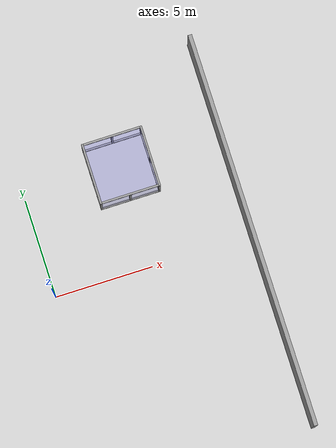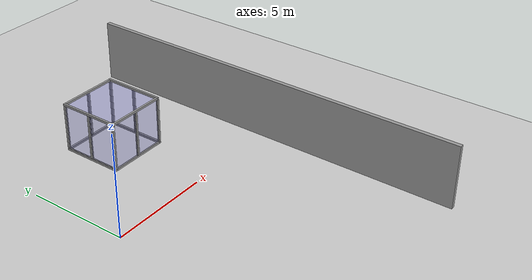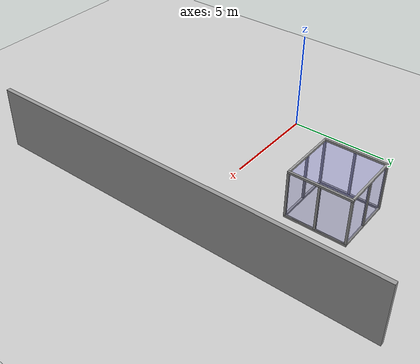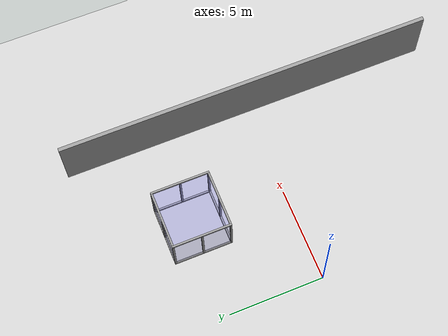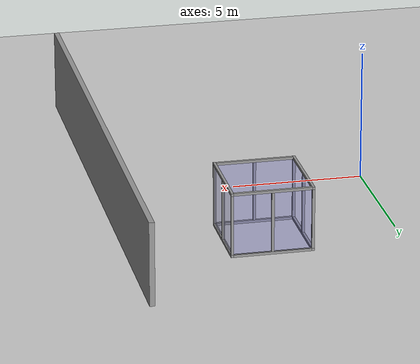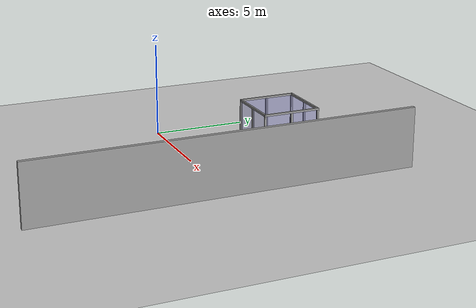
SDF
<sdf version="1.6">
 <world name="default">
  <model name="ground_plane">
   <static>1</static>
   <link name="link">
    <collision name="collision">
     <geometry><plane><normal>0 0 1</normal><size>100 100</size></plane></geometry>
     <surface><friction><ode><mu>100</mu><mu2>50</mu2></ode></friction></surface>
    </collision>
    <visual name="visual">
     <cast_shadows>0</cast_shadows>
     <geometry><plane><normal>0 0 1</normal><size>100 100</size></plane></geometry>
     <material>
      <script><uri>file://media/materials/scripts/gazebo.material</uri><name>Gazebo/Grey</name></script>
     </material>
    </visual>
   </link>
  </model>
  <model name="big_grey_wall_3">
   <static>1</static>
   <link name="link">
    <pose>0 0 1.4 0 -0 0</pose>
    <collision name="collision"><geometry><box><size>20 0.2 3.5</size></box></geometry></collision>
    <visual name="visual">
     <cast_shadows>0</cast_shadows>
     <geometry><box><size>20 0.2 3.5</size></box></geometry>
     <material>
      <script>
       <uri>model://grey_wall/materials/scripts</uri>
       <uri>model://grey_wall/materials/textures</uri>
       <name>vrc/grey_wall</name>
      </script>
     </material>
    </visual>
   </link>
   <pose>10.12 0 0 0 -0 1.5707</pose>
  </model>
  <model name="cage_1">
   <link name="link">
    <pose>0 -0 1.25 0 -0 0</pose>
    <inertial>
     <inertia><ixx>1</ixx><ixy>0</ixy><ixz>0</ixz><iyy>1</iyy><iyz>0</iyz><izz>1</izz></inertia>
     <mass>1</mass>
    </inertial>
    <visual name="visual">
     <geometry><box><size>3 3 2.3</size></box></geometry>
     <material>
      <script><name>Gazebo/Grey</name><uri>file://media/materials/scripts/gazebo.material</uri></script>
      <ambient>0.3 0.3 0.8 1</ambient>
      <diffuse>0.7 0.7 0.7 1</diffuse>
      <specular>0.01 0.01 0.01 1</specular>
      <emissive>0 0 0 1</emissive>
      <shader type="vertex"><normal_map>__default__</normal_map></shader>
     </material>
     <transparency>0.75</transparency>
    </visual>
   </link>
   <link name="base_back">
    <pose>-1.5 0 0.05 0 -0 1.5707</pose>
    <inertial>
     <mass>1</mass>
     <inertia>
      <ixx>0.166667</ixx>
      <ixy>0</ixy>
      <ixz>0</ixz>
      <iyy>0.166667</iyy>
      <iyz>0</iyz>
      <izz>0.166667</izz>
     </inertia>
    </inertial>
    <visual name="visual">
     <geometry><box><size>3.1 0.1 0.1</size></box></geometry>
     <material>
      <lighting>1</lighting>
      <script><uri>file://media/materials/scripts/gazebo.material</uri><name>Gazebo/Grey</name></script>
      <ambient>0.25 0.25 0.25 1</ambient>
      <diffuse>0.7 0.7 0.7 1</diffuse>
      <specular>0.01 0.01 0.01 1</specular>
      <emissive>0 0 0 1</emissive>
      <shader type="vertex"><normal_map>__default__</normal_map></shader>
     </material>
    </visual>
    <collision name="collision">
     <geometry><box><size>3.1 0.1 0.1</size></box></geometry>
     <surface>
      <friction>
       <ode><mu>100</mu><mu2>100</mu2><fdir1>0 0 0</fdir1><slip1>0</slip1><slip2>0</slip2></ode>
       <torsional>
        <coefficient>1</coefficient>
        <patch_radius>0</patch_radius>
        <surface_radius>0</surface_radius>
        <use_patch_radius>1</use_patch_radius>
        <ode><slip>0</slip></ode>
       </torsional>
      </friction>
      <bounce><restitution_coefficient>0</restitution_coefficient><threshold>1e+06</threshold></bounce>
      <contact>
       <collide_without_contact>0</collide_without_contact>
       <collide_without_contact_bitmask>1</collide_without_contact_bitmask>
       <collide_bitmask>1</collide_bitmask>
       <ode>
        <soft_cfm>0</soft_cfm>
        <soft_erp>0.2</soft_erp>
        <kp>1e+13</kp>
        <kd>1</kd>
        <max_vel>0.01</max_vel>
        <min_depth>0</min_depth>
       </ode>
       <bullet>
        <split_impulse>1</split_impulse>
        <split_impulse_penetration_threshold>-0.01</split_impulse_penetration_threshold>
        <soft_cfm>0</soft_cfm>
        <soft_erp>0.2</soft_erp>
        <kp>1e+13</kp>
        <kd>1</kd>
       </bullet>
      </contact>
     </surface>
    </collision>
   </link>
   <link name="base_front">
    <pose>1.5 -0 0.05 0 -0 1.5707</pose>
    <inertial>
     <mass>1</mass>
     <inertia>
      <ixx>0.166667</ixx>
      <ixy>0</ixy>
      <ixz>0</ixz>
      <iyy>0.166667</iyy>
      <iyz>0</iyz>
      <izz>0.166667</izz>
     </inertia>
    </inertial>
    <visual name="visual">
     <geometry><box><size>3.1 0.1 0.1</size></box></geometry>
     <material>
      <lighting>1</lighting>
      <script><uri>file://media/materials/scripts/gazebo.material</uri><name>Gazebo/Grey</name></script>
      <ambient>0.25 0.25 0.25 1</ambient>
      <diffuse>0.7 0.7 0.7 1</diffuse>
      <specular>0.01 0.01 0.01 1</specular>
      <emissive>0 0 0 1</emissive>
      <shader type="vertex"><normal_map>__default__</normal_map></shader>
     </material>
    </visual>
    <collision name="collision">
     <geometry><box><size>3.1 0.1 0.1</size></box></geometry>
     <surface>
      <friction>
       <ode><mu>100</mu><mu2>100</mu2><fdir1>0 0 0</fdir1><slip1>0</slip1><slip2>0</slip2></ode>
       <torsional>
        <coefficient>1</coefficient>
        <patch_radius>0</patch_radius>
        <surface_radius>0</surface_radius>
        <use_patch_radius>1</use_patch_radius>
        <ode><slip>0</slip></ode>
       </torsional>
      </friction>
      <bounce><restitution_coefficient>0</restitution_coefficient><threshold>1e+06</threshold></bounce>
      <contact>
       <collide_without_contact>0</collide_without_contact>
       <collide_without_contact_bitmask>1</collide_without_contact_bitmask>
       <collide_bitmask>1</collide_bitmask>
       <ode>
        <soft_cfm>0</soft_cfm>
        <soft_erp>0.2</soft_erp>
        <kp>1e+13</kp>
        <kd>1</kd>
        <max_vel>0.01</max_vel>
        <min_depth>0</min_depth>
       </ode>
       <bullet>
        <split_impulse>1</split_impulse>
        <split_impulse_penetration_threshold>-0.01</split_impulse_penetration_threshold>
        <soft_cfm>0</soft_cfm>
        <soft_erp>0.2</soft_erp>
        <kp>1e+13</kp>
        <kd>1</kd>
       </bullet>
      </contact>
     </surface>
    </collision>
   </link>
   <link name="base_left">
    <pose>0 1.5 0.05 0 -0 0</pose>
    <inertial>
     <mass>1</mass>
     <inertia>
      <ixx>0.166667</ixx>
      <ixy>0</ixy>
      <ixz>0</ixz>
      <iyy>0.166667</iyy>
      <iyz>0</iyz>
      <izz>0.166667</izz>
     </inertia>
    </inertial>
    <visual name="visual">
     <geometry><box><size>2.9 0.1 0.1</size></box></geometry>
     <material>
      <lighting>1</lighting>
      <script><uri>file://media/materials/scripts/gazebo.material</uri><name>Gazebo/Grey</name></script>
      <ambient>0.25 0.25 0.25 1</ambient>
      <diffuse>0.7 0.7 0.7 1</diffuse>
      <specular>0.01 0.01 0.01 1</specular>
      <emissive>0 0 0 1</emissive>
      <shader type="vertex"><normal_map>__default__</normal_map></shader>
     </material>
    </visual>
    <collision name="collision">
     <geometry><box><size>3.1 0.1 0.1</size></box></geometry>
     <surface>
      <friction>
       <ode><mu>100</mu><mu2>100</mu2><fdir1>0 0 0</fdir1><slip1>0</slip1><slip2>0</slip2></ode>
       <torsional>
        <coefficient>1</coefficient>
        <patch_radius>0</patch_radius>
        <surface_radius>0</surface_radius>
        <use_patch_radius>1</use_patch_radius>
        <ode><slip>0</slip></ode>
       </torsional>
      </friction>
      <bounce><restitution_coefficient>0</restitution_coefficient><threshold>1e+06</threshold></bounce>
      <contact>
       <collide_without_contact>0</collide_without_contact>
       <collide_without_contact_bitmask>1</collide_without_contact_bitmask>
       <collide_bitmask>1</collide_bitmask>
       <ode>
        <soft_cfm>0</soft_cfm>
        <soft_erp>0.2</soft_erp>
        <kp>1e+13</kp>
        <kd>1</kd>
        <max_vel>0.01</max_vel>
        <min_depth>0</min_depth>
       </ode>
       <bullet>
        <split_impulse>1</split_impulse>
        <split_impulse_penetration_threshold>-0.01</split_impulse_penetration_threshold>
        <soft_cfm>0</soft_cfm>
        <soft_erp>0.2</soft_erp>
        <kp>1e+13</kp>
        <kd>1</kd>
       </bullet>
      </contact>
     </surface>
    </collision>
   </link>
   <link name="base_right">
    <pose>-0 -1.5 0.05 0 -0 0</pose>
    <inertial>
     <mass>1</mass>
     <inertia>
      <ixx>0.166667</ixx>
      <ixy>0</ixy>
      <ixz>0</ixz>
      <iyy>0.166667</iyy>
      <iyz>0</iyz>
      <izz>0.166667</izz>
     </inertia>
    </inertial>
    <visual name="visual">
     <geometry><box><size>2.9 0.1 0.1</size></box></geometry>
     <material>
      <lighting>1</lighting>
      <script><uri>file://media/materials/scripts/gazebo.material</uri><name>Gazebo/Grey</name></script>
      <ambient>0.25 0.25 0.25 1</ambient>
      <diffuse>0.7 0.7 0.7 1</diffuse>
      <specular>0.01 0.01 0.01 1</specular>
      <emissive>0 0 0 1</emissive>
      <shader type="vertex"><normal_map>__default__</normal_map></shader>
     </material>
    </visual>
    <collision name="collision">
     <geometry><box><size>3.1 0.1 0.1</size></box></geometry>
     <surface>
      <friction>
       <ode><mu>100</mu><mu2>100</mu2><fdir1>0 0 0</fdir1><slip1>0</slip1><slip2>0</slip2></ode>
       <torsional>
        <coefficient>1</coefficient>
        <patch_radius>0</patch_radius>
        <surface_radius>0</surface_radius>
        <use_patch_radius>1</use_patch_radius>
        <ode><slip>0</slip></ode>
       </torsional>
      </friction>
      <bounce><restitution_coefficient>0</restitution_coefficient><threshold>1e+06</threshold></bounce>
      <contact>
       <collide_without_contact>0</collide_without_contact>
       <collide_without_contact_bitmask>1</collide_without_contact_bitmask>
       <collide_bitmask>1</collide_bitmask>
       <ode>
        <soft_cfm>0</soft_cfm>
        <soft_erp>0.2</soft_erp>
        <kp>1e+13</kp>
        <kd>1</kd>
        <max_vel>0.01</max_vel>
        <min_depth>0</min_depth>
       </ode>
       <bullet>
        <split_impulse>1</split_impulse>
        <split_impulse_penetration_threshold>-0.01</split_impulse_penetration_threshold>
        <soft_cfm>0</soft_cfm>
        <soft_erp>0.2</soft_erp>
        <kp>1e+13</kp>
        <kd>1</kd>
       </bullet>
      </contact>
     </surface>
    </collision>
   </link>
   <link name="column_0">
    <pose>1.5 -1.5 1.25 0 -0 0</pose>
    <inertial>
     <mass>1</mass>
     <inertia>
      <ixx>0.166667</ixx>
      <ixy>0</ixy>
      <ixz>0</ixz>
      <iyy>0.166667</iyy>
      <iyz>0</iyz>
      <izz>0.166667</izz>
     </inertia>
    </inertial>
    <visual name="visual">
     <geometry><box><size>0.1 0.1 2.3</size></box></geometry>
     <material>
      <lighting>1</lighting>
      <script><uri>file://media/materials/scripts/gazebo.material</uri><name>Gazebo/Grey</name></script>
      <ambient>0.3 0.3 0.3 1</ambient>
      <diffuse>0.25 0.25 0.25 1</diffuse>
      <specular>0.01 0.01 0.01 1</specular>
      <emissive>0 0 0 1</emissive>
      <shader type="vertex"><normal_map>__default__</normal_map></shader>
     </material>
    </visual>
    <collision name="collision">
     <geometry><box><size>0.1 0.1 2.3</size></box></geometry>
     <surface>
      <friction>
       <ode><mu>100</mu><mu2>100</mu2><fdir1>0 0 0</fdir1><slip1>0</slip1><slip2>0</slip2></ode>
       <torsional>
        <coefficient>1</coefficient>
        <patch_radius>0</patch_radius>
        <surface_radius>0</surface_radius>
        <use_patch_radius>1</use_patch_radius>
        <ode><slip>0</slip></ode>
       </torsional>
      </friction>
      <bounce><restitution_coefficient>0</restitution_coefficient><threshold>1e+06</threshold></bounce>
      <contact>
       <collide_without_contact>0</collide_without_contact>
       <collide_without_contact_bitmask>1</collide_without_contact_bitmask>
       <collide_bitmask>1</collide_bitmask>
       <ode>
        <soft_cfm>0</soft_cfm>
        <soft_erp>0.2</soft_erp>
        <kp>1e+13</kp>
        <kd>1</kd>
        <max_vel>0.01</max_vel>
        <min_depth>0</min_depth>
       </ode>
       <bullet>
        <split_impulse>1</split_impulse>
        <split_impulse_penetration_threshold>-0.01</split_impulse_penetration_threshold>
        <soft_cfm>0</soft_cfm>
        <soft_erp>0.2</soft_erp>
        <kp>1e+13</kp>
        <kd>1</kd>
       </bullet>
      </contact>
     </surface>
    </collision>
   </link>
   <link name="column_1">
    <pose>1.5 0 1.25 0 -0 0</pose>
    <inertial>
     <mass>1</mass>
     <inertia>
      <ixx>0.166667</ixx>
      <ixy>0</ixy>
      <ixz>0</ixz>
      <iyy>0.166667</iyy>
      <iyz>0</iyz>
      <izz>0.166667</izz>
     </inertia>
    </inertial>
    <visual name="visual">
     <geometry><box><size>0.1 0.1 2.3</size></box></geometry>
     <material>
      <lighting>1</lighting>
      <script><uri>file://media/materials/scripts/gazebo.material</uri><name>Gazebo/Grey</name></script>
      <ambient>0.3 0.3 0.3 1</ambient>
      <diffuse>0.25 0.25 0.25 1</diffuse>
      <specular>0.01 0.01 0.01 1</specular>
      <emissive>0 0 0 1</emissive>
      <shader type="vertex"><normal_map>__default__</normal_map></shader>
     </material>
    </visual>
    <collision name="collision">
     <geometry><box><size>0.1 0.1 2.3</size></box></geometry>
     <surface>
      <friction>
       <ode><mu>100</mu><mu2>100</mu2><fdir1>0 0 0</fdir1><slip1>0</slip1><slip2>0</slip2></ode>
       <torsional>
        <coefficient>1</coefficient>
        <patch_radius>0</patch_radius>
        <surface_radius>0</surface_radius>
        <use_patch_radius>1</use_patch_radius>
        <ode><slip>0</slip></ode>
       </torsional>
      </friction>
      <bounce><restitution_coefficient>0</restitution_coefficient><threshold>1e+06</threshold></bounce>
      <contact>
       <collide_without_contact>0</collide_without_contact>
       <collide_without_contact_bitmask>1</collide_without_contact_bitmask>
       <collide_bitmask>1</collide_bitmask>
       <ode>
        <soft_cfm>0</soft_cfm>
        <soft_erp>0.2</soft_erp>
        <kp>1e+13</kp>
        <kd>1</kd>
        <max_vel>0.01</max_vel>
        <min_depth>0</min_depth>
       </ode>
       <bullet>
        <split_impulse>1</split_impulse>
        <split_impulse_penetration_threshold>-0.01</split_impulse_penetration_threshold>
        <soft_cfm>0</soft_cfm>
        <soft_erp>0.2</soft_erp>
        <kp>1e+13</kp>
        <kd>1</kd>
       </bullet>
      </contact>
     </surface>
    </collision>
   </link>
   <link name="column_2">
    <pose>1.5 1.5 1.25 0 -0 0</pose>
    <inertial>
     <mass>1</mass>
     <inertia>
      <ixx>0.166667</ixx>
      <ixy>0</ixy>
      <ixz>0</ixz>
      <iyy>0.166667</iyy>
      <iyz>0</iyz>
      <izz>0.166667</izz>
     </inertia>
    </inertial>
    <visual name="visual">
     <geometry><box><size>0.1 0.1 2.3</size></box></geometry>
     <material>
      <lighting>1</lighting>
      <script><uri>file://media/materials/scripts/gazebo.material</uri><name>Gazebo/Grey</name></script>
      <ambient>0.3 0.3 0.3 1</ambient>
      <diffuse>0.25 0.25 0.25 1</diffuse>
      <specular>0.01 0.01 0.01 1</specular>
      <emissive>0 0 0 1</emissive>
      <shader type="vertex"><normal_map>__default__</normal_map></shader>
     </material>
    </visual>
    <collision name="collision">
     <geometry><box><size>0.1 0.1 2.3</size></box></geometry>
     <surface>
      <friction>
       <ode><mu>100</mu><mu2>100</mu2><fdir1>0 0 0</fdir1><slip1>0</slip1><slip2>0</slip2></ode>
       <torsional>
        <coefficient>1</coefficient>
        <patch_radius>0</patch_radius>
        <surface_radius>0</surface_radius>
        <use_patch_radius>1</use_patch_radius>
        <ode><slip>0</slip></ode>
       </torsional>
      </friction>
      <bounce><restitution_coefficient>0</restitution_coefficient><threshold>1e+06</threshold></bounce>
      <contact>
       <collide_without_contact>0</collide_without_contact>
       <collide_without_contact_bitmask>1</collide_without_contact_bitmask>
       <collide_bitmask>1</collide_bitmask>
       <ode>
        <soft_cfm>0</soft_cfm>
        <soft_erp>0.2</soft_erp>
        <kp>1e+13</kp>
        <kd>1</kd>
        <max_vel>0.01</max_vel>
        <min_depth>0</min_depth>
       </ode>
       <bullet>
        <split_impulse>1</split_impulse>
        <split_impulse_penetration_threshold>-0.01</split_impulse_penetration_threshold>
        <soft_cfm>0</soft_cfm>
        <soft_erp>0.2</soft_erp>
        <kp>1e+13</kp>
        <kd>1</kd>
       </bullet>
      </contact>
     </surface>
    </collision>
   </link>
   <link name="column_3">
    <pose>-0 1.5 1.25 0 -0 0</pose>
    <inertial>
     <mass>1</mass>
     <inertia>
      <ixx>0.166667</ixx>
      <ixy>0</ixy>
      <ixz>0</ixz>
      <iyy>0.166667</iyy>
      <iyz>0</iyz>
      <izz>0.166667</izz>
     </inertia>
    </inertial>
    <visual name="visual">
     <geometry><box><size>0.1 0.1 2.3</size></box></geometry>
     <material>
      <lighting>1</lighting>
      <script><uri>file://media/materials/scripts/gazebo.material</uri><name>Gazebo/Grey</name></script>
      <ambient>0.3 0.3 0.3 1</ambient>
      <diffuse>0.25 0.25 0.25 1</diffuse>
      <specular>0.01 0.01 0.01 1</specular>
      <emissive>0 0 0 1</emissive>
      <shader type="vertex"><normal_map>__default__</normal_map></shader>
     </material>
    </visual>
    <collision name="collision">
     <geometry><box><size>0.1 0.1 2.3</size></box></geometry>
     <surface>
      <friction>
       <ode><mu>100</mu><mu2>100</mu2><fdir1>0 0 0</fdir1><slip1>0</slip1><slip2>0</slip2></ode>
       <torsional>
        <coefficient>1</coefficient>
        <patch_radius>0</patch_radius>
        <surface_radius>0</surface_radius>
        <use_patch_radius>1</use_patch_radius>
        <ode><slip>0</slip></ode>
       </torsional>
      </friction>
      <bounce><restitution_coefficient>0</restitution_coefficient><threshold>1e+06</threshold></bounce>
      <contact>
       <collide_without_contact>0</collide_without_contact>
       <collide_without_contact_bitmask>1</collide_without_contact_bitmask>
       <collide_bitmask>1</collide_bitmask>
       <ode>
        <soft_cfm>0</soft_cfm>
        <soft_erp>0.2</soft_erp>
        <kp>1e+13</kp>
        <kd>1</kd>
        <max_vel>0.01</max_vel>
        <min_depth>0</min_depth>
       </ode>
       <bullet>
        <split_impulse>1</split_impulse>
        <split_impulse_penetration_threshold>-0.01</split_impulse_penetration_threshold>
        <soft_cfm>0</soft_cfm>
        <soft_erp>0.2</soft_erp>
        <kp>1e+13</kp>
        <kd>1</kd>
       </bullet>
      </contact>
     </surface>
    </collision>
   </link>
   <link name="column_4">
    <pose>-1.5 1.5 1.25 0 -0 0</pose>
    <inertial>
     <mass>1</mass>
     <inertia>
      <ixx>0.166667</ixx>
      <ixy>0</ixy>
      <ixz>0</ixz>
      <iyy>0.166667</iyy>
      <iyz>0</iyz>
      <izz>0.166667</izz>
     </inertia>
    </inertial>
    <visual name="visual">
     <geometry><box><size>0.1 0.1 2.3</size></box></geometry>
     <material>
      <lighting>1</lighting>
      <script><uri>file://media/materials/scripts/gazebo.material</uri><name>Gazebo/Grey</name></script>
      <ambient>0.3 0.3 0.3 1</ambient>
      <diffuse>0.25 0.25 0.25 1</diffuse>
      <specular>0.01 0.01 0.01 1</specular>
      <emissive>0 0 0 1</emissive>
      <shader type="vertex"><normal_map>__default__</normal_map></shader>
     </material>
    </visual>
    <collision name="collision">
     <geometry><box><size>0.1 0.1 2.3</size></box></geometry>
     <surface>
      <friction>
       <ode><mu>100</mu><mu2>100</mu2><fdir1>0 0 0</fdir1><slip1>0</slip1><slip2>0</slip2></ode>
       <torsional>
        <coefficient>1</coefficient>
        <patch_radius>0</patch_radius>
        <surface_radius>0</surface_radius>
        <use_patch_radius>1</use_patch_radius>
        <ode><slip>0</slip></ode>
       </torsional>
      </friction>
      <bounce><restitution_coefficient>0</restitution_coefficient><threshold>1e+06</threshold></bounce>
      <contact>
       <collide_without_contact>0</collide_without_contact>
       <collide_without_contact_bitmask>1</collide_without_contact_bitmask>
       <collide_bitmask>1</collide_bitmask>
       <ode>
        <soft_cfm>0</soft_cfm>
        <soft_erp>0.2</soft_erp>
        <kp>1e+13</kp>
        <kd>1</kd>
        <max_vel>0.01</max_vel>
        <min_depth>0</min_depth>
       </ode>
       <bullet>
        <split_impulse>1</split_impulse>
        <split_impulse_penetration_threshold>-0.01</split_impulse_penetration_threshold>
        <soft_cfm>0</soft_cfm>
        <soft_erp>0.2</soft_erp>
        <kp>1e+13</kp>
        <kd>1</kd>
       </bullet>
      </contact>
     </surface>
    </collision>
   </link>
   <link name="column_5">
    <pose>-1.5 0 1.25 0 -0 0</pose>
    <inertial>
     <mass>1</mass>
     <inertia>
      <ixx>0.166667</ixx>
      <ixy>0</ixy>
      <ixz>0</ixz>
      <iyy>0.166667</iyy>
      <iyz>0</iyz>
      <izz>0.166667</izz>
     </inertia>
    </inertial>
    <visual name="visual">
     <geometry><box><size>0.1 0.1 2.3</size></box></geometry>
     <material>
      <lighting>1</lighting>
      <script><uri>file://media/materials/scripts/gazebo.material</uri><name>Gazebo/Grey</name></script>
      <ambient>0.3 0.3 0.3 1</ambient>
      <diffuse>0.25 0.25 0.25 1</diffuse>
      <specular>0.01 0.01 0.01 1</specular>
      <emissive>0 0 0 1</emissive>
      <shader type="vertex"><normal_map>__default__</normal_map></shader>
     </material>
    </visual>
    <collision name="collision">
     <geometry><box><size>0.1 0.1 2.3</size></box></geometry>
     <surface>
      <friction>
       <ode><mu>100</mu><mu2>100</mu2><fdir1>0 0 0</fdir1><slip1>0</slip1><slip2>0</slip2></ode>
       <torsional>
        <coefficient>1</coefficient>
        <patch_radius>0</patch_radius>
        <surface_radius>0</surface_radius>
        <use_patch_radius>1</use_patch_radius>
        <ode><slip>0</slip></ode>
       </torsional>
      </friction>
      <bounce><restitution_coefficient>0</restitution_coefficient><threshold>1e+06</threshold></bounce>
      <contact>
       <collide_without_contact>0</collide_without_contact>
       <collide_without_contact_bitmask>1</collide_without_contact_bitmask>
       <collide_bitmask>1</collide_bitmask>
       <ode>
        <soft_cfm>0</soft_cfm>
        <soft_erp>0.2</soft_erp>
        <kp>1e+13</kp>
        <kd>1</kd>
        <max_vel>0.01</max_vel>
        <min_depth>0</min_depth>
       </ode>
       <bullet>
        <split_impulse>1</split_impulse>
        <split_impulse_penetration_threshold>-0.01</split_impulse_penetration_threshold>
        <soft_cfm>0</soft_cfm>
        <soft_erp>0.2</soft_erp>
        <kp>1e+13</kp>
        <kd>1</kd>
       </bullet>
      </contact>
     </surface>
    </collision>
   </link>
   <link name="column_6">
    <pose>-1.5 -1.5 1.25 0 -0 0</pose>
    <inertial>
     <mass>1</mass>
     <inertia>
      <ixx>0.166667</ixx>
      <ixy>0</ixy>
      <ixz>0</ixz>
      <iyy>0.166667</iyy>
      <iyz>0</iyz>
      <izz>0.166667</izz>
     </inertia>
    </inertial>
    <visual name="visual">
     <geometry><box><size>0.1 0.1 2.3</size></box></geometry>
     <material>
      <lighting>1</lighting>
      <script><uri>file://media/materials/scripts/gazebo.material</uri><name>Gazebo/Grey</name></script>
      <ambient>0.3 0.3 0.3 1</ambient>
      <diffuse>0.25 0.25 0.25 1</diffuse>
      <specular>0.01 0.01 0.01 1</specular>
      <emissive>0 0 0 1</emissive>
      <shader type="vertex"><normal_map>__default__</normal_map></shader>
     </material>
    </visual>
    <collision name="collision">
     <geometry><box><size>0.1 0.1 2.3</size></box></geometry>
     <surface>
      <friction>
       <ode><mu>100</mu><mu2>100</mu2><fdir1>0 0 0</fdir1><slip1>0</slip1><slip2>0</slip2></ode>
       <torsional>
        <coefficient>1</coefficient>
        <patch_radius>0</patch_radius>
        <surface_radius>0</surface_radius>
        <use_patch_radius>1</use_patch_radius>
        <ode><slip>0</slip></ode>
       </torsional>
      </friction>
      <bounce><restitution_coefficient>0</restitution_coefficient><threshold>1e+06</threshold></bounce>
      <contact>
       <collide_without_contact>0</collide_without_contact>
       <collide_without_contact_bitmask>1</collide_without_contact_bitmask>
       <collide_bitmask>1</collide_bitmask>
       <ode>
        <soft_cfm>0</soft_cfm>
        <soft_erp>0.2</soft_erp>
        <kp>1e+13</kp>
        <kd>1</kd>
        <max_vel>0.01</max_vel>
        <min_depth>0</min_depth>
       </ode>
       <bullet>
        <split_impulse>1</split_impulse>
        <split_impulse_penetration_threshold>-0.01</split_impulse_penetration_threshold>
        <soft_cfm>0</soft_cfm>
        <soft_erp>0.2</soft_erp>
        <kp>1e+13</kp>
        <kd>1</kd>
       </bullet>
      </contact>
     </surface>
    </collision>
   </link>
   <link name="column_7">
    <pose>-0 -1.5 1.25 0 -0 0</pose>
    <inertial>
     <mass>1</mass>
     <inertia>
      <ixx>0.166667</ixx>
      <ixy>0</ixy>
      <ixz>0</ixz>
      <iyy>0.166667</iyy>
      <iyz>0</iyz>
      <izz>0.166667</izz>
     </inertia>
    </inertial>
    <visual name="visual">
     <geometry><box><size>0.1 0.1 2.3</size></box></geometry>
     <material>
      <lighting>1</lighting>
      <script><uri>file://media/materials/scripts/gazebo.material</uri><name>Gazebo/Grey</name></script>
      <ambient>0.3 0.3 0.3 1</ambient>
      <diffuse>0.25 0.25 0.25 1</diffuse>
      <specular>0.01 0.01 0.01 1</specular>
      <emissive>0 0 0 1</emissive>
      <shader type="vertex"><normal_map>__default__</normal_map></shader>
     </material>
    </visual>
    <collision name="collision">
     <geometry><box><size>0.1 0.1 2.3</size></box></geometry>
     <surface>
      <friction>
       <ode><mu>100</mu><mu2>100</mu2><fdir1>0 0 0</fdir1><slip1>0</slip1><slip2>0</slip2></ode>
       <torsional>
        <coefficient>1</coefficient>
        <patch_radius>0</patch_radius>
        <surface_radius>0</surface_radius>
        <use_patch_radius>1</use_patch_radius>
        <ode><slip>0</slip></ode>
       </torsional>
      </friction>
      <bounce><restitution_coefficient>0</restitution_coefficient><threshold>1e+06</threshold></bounce>
      <contact>
       <collide_without_contact>0</collide_without_contact>
       <collide_without_contact_bitmask>1</collide_without_contact_bitmask>
       <collide_bitmask>1</collide_bitmask>
       <ode>
        <soft_cfm>0</soft_cfm>
        <soft_erp>0.2</soft_erp>
        <kp>1e+13</kp>
        <kd>1</kd>
        <max_vel>0.01</max_vel>
        <min_depth>0</min_depth>
       </ode>
       <bullet>
        <split_impulse>1</split_impulse>
        <split_impulse_penetration_threshold>-0.01</split_impulse_penetration_threshold>
        <soft_cfm>0</soft_cfm>
        <soft_erp>0.2</soft_erp>
        <kp>1e+13</kp>
        <kd>1</kd>
       </bullet>
      </contact>
     </surface>
    </collision>
   </link>
   <link name="top_back">
    <pose>-1.5 0 2.45 0 -0 1.5707</pose>
    <inertial>
     <mass>1</mass>
     <inertia>
      <ixx>0.166667</ixx>
      <ixy>0</ixy>
      <ixz>0</ixz>
      <iyy>0.166667</iyy>
      <iyz>0</iyz>
      <izz>0.166667</izz>
     </inertia>
    </inertial>
    <visual name="visual">
     <geometry><box><size>3.1 0.1 0.1</size></box></geometry>
     <material>
      <lighting>1</lighting>
      <script><uri>file://media/materials/scripts/gazebo.material</uri><name>Gazebo/Grey</name></script>
      <ambient>0.25 0.25 0.25 1</ambient>
      <diffuse>0.7 0.7 0.7 1</diffuse>
      <specular>0.01 0.01 0.01 1</specular>
      <emissive>0 0 0 1</emissive>
      <shader type="vertex"><normal_map>__default__</normal_map></shader>
     </material>
    </visual>
    <collision name="collision">
     <geometry><box><size>3.1 0.1 0.1</size></box></geometry>
     <surface>
      <friction>
       <ode><mu>100</mu><mu2>100</mu2><fdir1>0 0 0</fdir1><slip1>0</slip1><slip2>0</slip2></ode>
       <torsional>
        <coefficient>1</coefficient>
        <patch_radius>0</patch_radius>
        <surface_radius>0</surface_radius>
        <use_patch_radius>1</use_patch_radius>
        <ode><slip>0</slip></ode>
       </torsional>
      </friction>
      <bounce><restitution_coefficient>0</restitution_coefficient><threshold>1e+06</threshold></bounce>
      <contact>
       <collide_without_contact>0</collide_without_contact>
       <collide_without_contact_bitmask>1</collide_without_contact_bitmask>
       <collide_bitmask>1</collide_bitmask>
       <ode>
        <soft_cfm>0</soft_cfm>
        <soft_erp>0.2</soft_erp>
        <kp>1e+13</kp>
        <kd>1</kd>
        <max_vel>0.01</max_vel>
        <min_depth>0</min_depth>
       </ode>
       <bullet>
        <split_impulse>1</split_impulse>
        <split_impulse_penetration_threshold>-0.01</split_impulse_penetration_threshold>
        <soft_cfm>0</soft_cfm>
        <soft_erp>0.2</soft_erp>
        <kp>1e+13</kp>
        <kd>1</kd>
       </bullet>
      </contact>
     </surface>
    </collision>
   </link>
   <link name="top_front">
    <pose>1.5 0 2.45 0 -0 1.5707</pose>
    <inertial>
     <mass>1</mass>
     <inertia>
      <ixx>0.166667</ixx>
      <ixy>0</ixy>
      <ixz>0</ixz>
      <iyy>0.166667</iyy>
      <iyz>0</iyz>
      <izz>0.166667</izz>
     </inertia>
    </inertial>
    <visual name="visual">
     <geometry><box><size>3.1 0.1 0.1</size></box></geometry>
     <material>
      <lighting>1</lighting>
      <script><uri>file://media/materials/scripts/gazebo.material</uri><name>Gazebo/Grey</name></script>
      <ambient>0.25 0.25 0.25 1</ambient>
      <diffuse>0.7 0.7 0.7 1</diffuse>
      <specular>0.01 0.01 0.01 1</specular>
      <emissive>0 0 0 1</emissive>
      <shader type="vertex"><normal_map>__default__</normal_map></shader>
     </material>
    </visual>
    <collision name="collision">
     <geometry><box><size>3.1 0.1 0.1</size></box></geometry>
     <surface>
      <friction>
       <ode><mu>100</mu><mu2>100</mu2><fdir1>0 0 0</fdir1><slip1>0</slip1><slip2>0</slip2></ode>
       <torsional>
        <coefficient>1</coefficient>
        <patch_radius>0</patch_radius>
        <surface_radius>0</surface_radius>
        <use_patch_radius>1</use_patch_radius>
        <ode><slip>0</slip></ode>
       </torsional>
      </friction>
      <bounce><restitution_coefficient>0</restitution_coefficient><threshold>1e+06</threshold></bounce>
      <contact>
       <collide_without_contact>0</collide_without_contact>
       <collide_without_contact_bitmask>1</collide_without_contact_bitmask>
       <collide_bitmask>1</collide_bitmask>
       <ode>
        <soft_cfm>0</soft_cfm>
        <soft_erp>0.2</soft_erp>
        <kp>1e+13</kp>
        <kd>1</kd>
        <max_vel>0.01</max_vel>
        <min_depth>0</min_depth>
       </ode>
       <bullet>
        <split_impulse>1</split_impulse>
        <split_impulse_penetration_threshold>-0.01</split_impulse_penetration_threshold>
        <soft_cfm>0</soft_cfm>
        <soft_erp>0.2</soft_erp>
        <kp>1e+13</kp>
        <kd>1</kd>
       </bullet>
      </contact>
     </surface>
    </collision>
   </link>
   <link name="top_left">
    <pose>0 1.5 2.45 0 -0 0</pose>
    <inertial>
     <mass>1</mass>
     <inertia>
      <ixx>0.166667</ixx>
      <ixy>0</ixy>
      <ixz>0</ixz>
      <iyy>0.166667</iyy>
      <iyz>0</iyz>
      <izz>0.166667</izz>
     </inertia>
    </inertial>
    <visual name="visual">
     <geometry><box><size>2.9 0.1 0.1</size></box></geometry>
     <material>
      <lighting>1</lighting>
      <script><uri>file://media/materials/scripts/gazebo.material</uri><name>Gazebo/Grey</name></script>
      <ambient>0.25 0.25 0.25 1</ambient>
      <diffuse>0.7 0.7 0.7 1</diffuse>
      <specular>0.01 0.01 0.01 1</specular>
      <emissive>0 0 0 1</emissive>
      <shader type="vertex"><normal_map>__default__</normal_map></shader>
     </material>
    </visual>
    <collision name="collision">
     <geometry><box><size>3.1 0.1 0.1</size></box></geometry>
     <surface>
      <friction>
       <ode><mu>100</mu><mu2>100</mu2><fdir1>0 0 0</fdir1><slip1>0</slip1><slip2>0</slip2></ode>
       <torsional>
        <coefficient>1</coefficient>
        <patch_radius>0</patch_radius>
        <surface_radius>0</surface_radius>
        <use_patch_radius>1</use_patch_radius>
        <ode><slip>0</slip></ode>
       </torsional>
      </friction>
      <bounce><restitution_coefficient>0</restitution_coefficient><threshold>1e+06</threshold></bounce>
      <contact>
       <collide_without_contact>0</collide_without_contact>
       <collide_without_contact_bitmask>1</collide_without_contact_bitmask>
       <collide_bitmask>1</collide_bitmask>
       <ode>
        <soft_cfm>0</soft_cfm>
        <soft_erp>0.2</soft_erp>
        <kp>1e+13</kp>
        <kd>1</kd>
        <max_vel>0.01</max_vel>
        <min_depth>0</min_depth>
       </ode>
       <bullet>
        <split_impulse>1</split_impulse>
        <split_impulse_penetration_threshold>-0.01</split_impulse_penetration_threshold>
        <soft_cfm>0</soft_cfm>
        <soft_erp>0.2</soft_erp>
        <kp>1e+13</kp>
        <kd>1</kd>
       </bullet>
      </contact>
     </surface>
    </collision>
   </link>
   <link name="top_right">
    <pose>-0 -1.5 2.45 0 -0 0</pose>
    <inertial>
     <mass>1</mass>
     <inertia>
      <ixx>0.166667</ixx>
      <ixy>0</ixy>
      <ixz>0</ixz>
      <iyy>0.166667</iyy>
      <iyz>0</iyz>
      <izz>0.166667</izz>
     </inertia>
    </inertial>
    <visual name="visual">
     <geometry><box><size>2.9 0.1 0.1</size></box></geometry>
     <material>
      <lighting>1</lighting>
      <script><uri>file://media/materials/scripts/gazebo.material</uri><name>Gazebo/Grey</name></script>
      <ambient>0.25 0.25 0.25 1</ambient>
      <diffuse>0.7 0.7 0.7 1</diffuse>
      <specular>0.01 0.01 0.01 1</specular>
      <emissive>0 0 0 1</emissive>
      <shader type="vertex"><normal_map>__default__</normal_map></shader>
     </material>
    </visual>
    <collision name="collision">
     <geometry><box><size>3.1 0.1 0.1</size></box></geometry>
     <surface>
      <friction>
       <ode><mu>100</mu><mu2>100</mu2><fdir1>0 0 0</fdir1><slip1>0</slip1><slip2>0</slip2></ode>
       <torsional>
        <coefficient>1</coefficient>
        <patch_radius>0</patch_radius>
        <surface_radius>0</surface_radius>
        <use_patch_radius>1</use_patch_radius>
        <ode><slip>0</slip></ode>
       </torsional>
      </friction>
      <bounce><restitution_coefficient>0</restitution_coefficient><threshold>1e+06</threshold></bounce>
      <contact>
       <collide_without_contact>0</collide_without_contact>
       <collide_without_contact_bitmask>1</collide_without_contact_bitmask>
       <collide_bitmask>1</collide_bitmask>
       <ode>
        <soft_cfm>0</soft_cfm>
        <soft_erp>0.2</soft_erp>
        <kp>1e+13</kp>
        <kd>1</kd>
        <max_vel>0.01</max_vel>
        <min_depth>0</min_depth>
       </ode>
       <bullet>
        <split_impulse>1</split_impulse>
        <split_impulse_penetration_threshold>-0.01</split_impulse_penetration_threshold>
        <soft_cfm>0</soft_cfm>
        <soft_erp>0.2</soft_erp>
        <kp>1e+13</kp>
        <kd>1</kd>
       </bullet>
      </contact>
     </surface>
    </collision>
   </link>
   <joint name="link_JOINT_0" type="fixed">
    <parent>link</parent>
    <child>top_left</child>
    <physics>
     <ode><limit><cfm>0</cfm><erp>0.2</erp></limit><suspension><cfm>0</cfm><erp>0.2</erp></suspension></ode>
    </physics>
   </joint>
   <joint name="link_JOINT_10" type="fixed">
    <parent>link</parent>
    <child>column_2</child>
    <physics>
     <ode><limit><cfm>0</cfm><erp>0.2</erp></limit><suspension><cfm>0</cfm><erp>0.2</erp></suspension></ode>
    </physics>
   </joint>
   <joint name="link_JOINT_12" type="fixed">
    <parent>link</parent>
    <child>column_3</child>
    <physics>
     <ode><limit><cfm>0</cfm><erp>0.2</erp></limit><suspension><cfm>0</cfm><erp>0.2</erp></suspension></ode>
    </physics>
   </joint>
   <joint name="link_JOINT_13" type="fixed">
    <parent>link</parent>
    <child>column_4</child>
    <physics>
     <ode><limit><cfm>0</cfm><erp>0.2</erp></limit><suspension><cfm>0</cfm><erp>0.2</erp></suspension></ode>
    </physics>
   </joint>
   <joint name="link_JOINT_14" type="fixed">
    <parent>link</parent>
    <child>column_5</child>
    <physics>
     <ode><limit><cfm>0</cfm><erp>0.2</erp></limit><suspension><cfm>0</cfm><erp>0.2</erp></suspension></ode>
    </physics>
   </joint>
   <joint name="link_JOINT_15" type="fixed">
    <parent>link</parent>
    <child>column_6</child>
    <physics>
     <ode><limit><cfm>0</cfm><erp>0.2</erp></limit><suspension><cfm>0</cfm><erp>0.2</erp></suspension></ode>
    </physics>
   </joint>
   <joint name="link_JOINT_16" type="fixed">
    <parent>link</parent>
    <child>column_7</child>
    <physics>
     <ode><limit><cfm>0</cfm><erp>0.2</erp></limit><suspension><cfm>0</cfm><erp>0.2</erp></suspension></ode>
    </physics>
   </joint>
   <joint name="link_JOINT_17" type="fixed">
    <parent>link</parent>
    <child>base_front</child>
    <physics>
     <ode><limit><cfm>0</cfm><erp>0.2</erp></limit><suspension><cfm>0</cfm><erp>0.2</erp></suspension></ode>
    </physics>
   </joint>
   <joint name="link_JOINT_18" type="fixed">
    <parent>link</parent>
    <child>base_left</child>
    <physics>
     <ode><limit><cfm>0</cfm><erp>0.2</erp></limit><suspension><cfm>0</cfm><erp>0.2</erp></suspension></ode>
    </physics>
   </joint>
   <joint name="link_JOINT_19" type="fixed">
    <parent>link</parent>
    <child>base_back</child>
    <physics>
     <ode><limit><cfm>0</cfm><erp>0.2</erp></limit><suspension><cfm>0</cfm><erp>0.2</erp></suspension></ode>
    </physics>
   </joint>
   <joint name="link_JOINT_20" type="fixed">
    <parent>link</parent>
    <child>base_right</child>
    <physics>
     <ode><limit><cfm>0</cfm><erp>0.2</erp></limit><suspension><cfm>0</cfm><erp>0.2</erp></suspension></ode>
    </physics>
   </joint>
   <joint name="link_JOINT_21" type="fixed">
    <parent>link</parent>
    <child>top_front</child>
    <physics>
     <ode><limit><cfm>0</cfm><erp>0.2</erp></limit><suspension><cfm>0</cfm><erp>0.2</erp></suspension></ode>
    </physics>
   </joint>
   <joint name="link_JOINT_23" type="fixed">
    <parent>link</parent>
    <child>top_back</child>
    <physics>
     <ode><limit><cfm>0</cfm><erp>0.2</erp></limit><suspension><cfm>0</cfm><erp>0.2</erp></suspension></ode>
    </physics>
   </joint>
   <joint name="link_JOINT_24" type="fixed">
    <parent>link</parent>
    <child>top_right</child>
    <physics>
     <ode><limit><cfm>0</cfm><erp>0.2</erp></limit><suspension><cfm>0</cfm><erp>0.2</erp></suspension></ode>
    </physics>
   </joint>
   <joint name="link_JOINT_7" type="fixed">
    <parent>link</parent>
    <child>column_0</child>
    <physics>
     <ode><limit><cfm>0</cfm><erp>0.2</erp></limit><suspension><cfm>0</cfm><erp>0.2</erp></suspension></ode>
    </physics>
   </joint>
   <joint name="link_JOINT_9" type="fixed">
    <parent>link</parent>
    <child>column_1</child>
    <physics>
     <ode><limit><cfm>0</cfm><erp>0.2</erp></limit><suspension><cfm>0</cfm><erp>0.2</erp></suspension></ode>
    </physics>
   </joint>
   <static>1</static>
   <pose>5 5 0 0 -0 0</pose>
  </model>
 </world>
</sdf>
